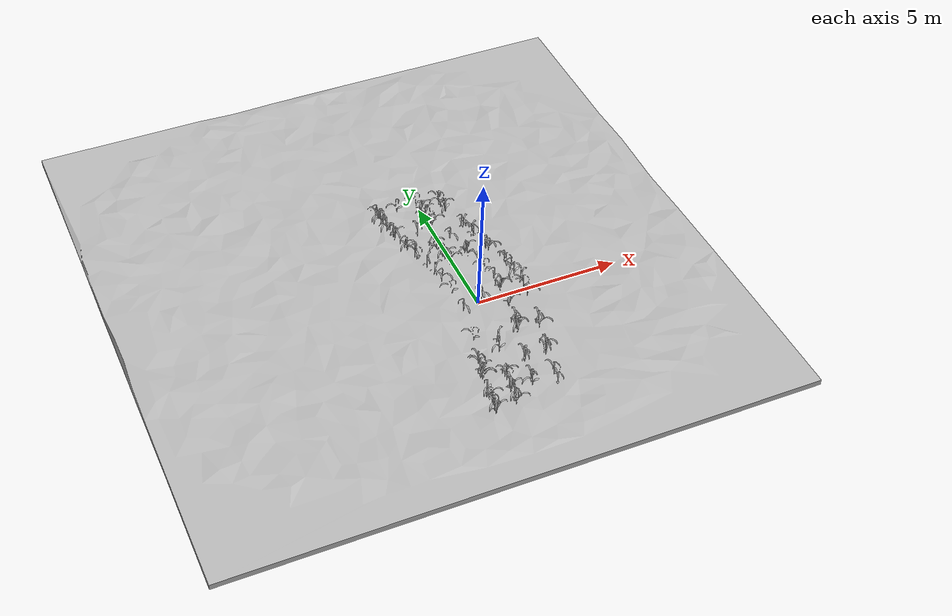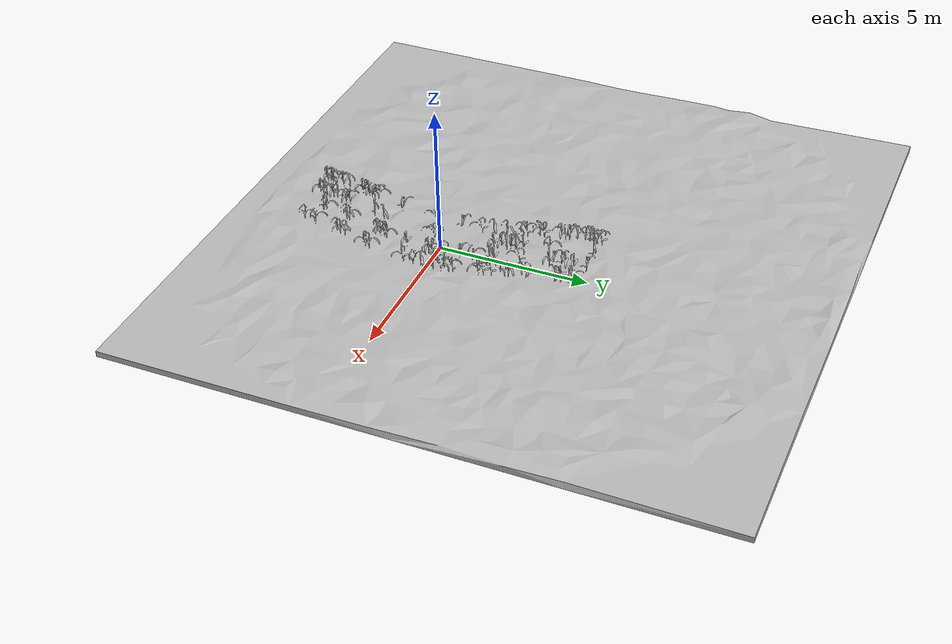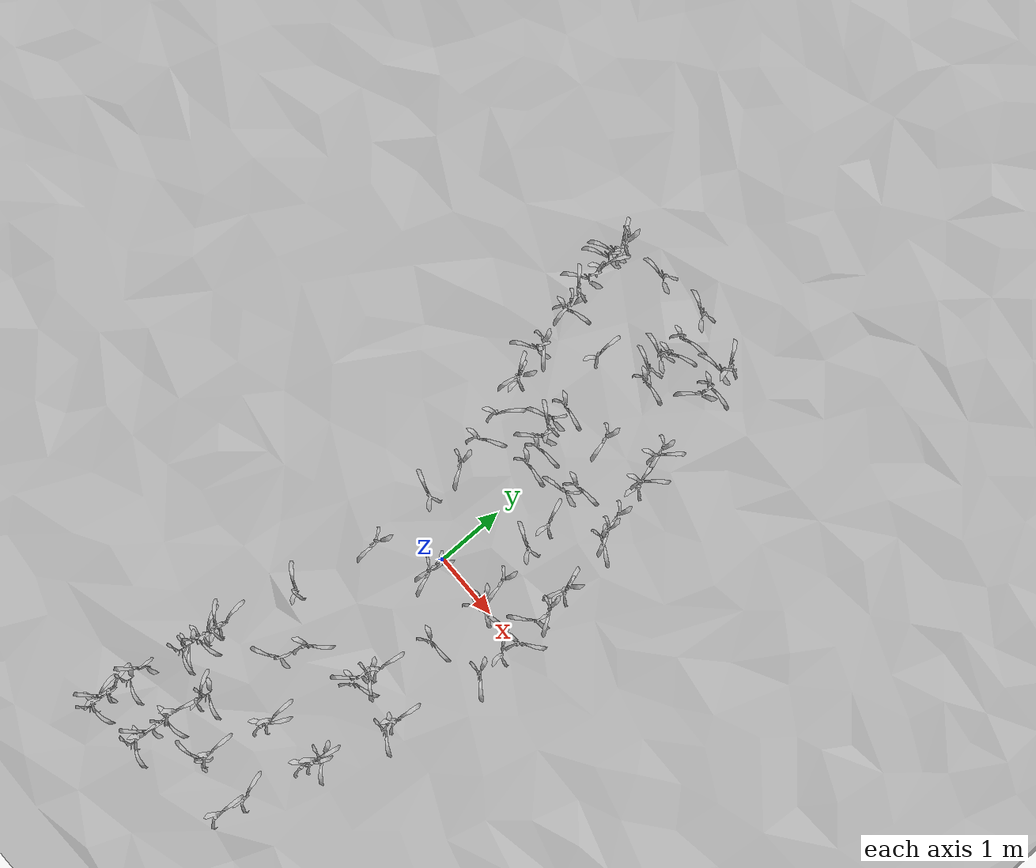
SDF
<sdf version="1.6">
 <world name="default">
  <light name="sun" type="directional">
   <pose>0 0 10 0 -0 0</pose>
   <diffuse>0.8 0.8 0.8 1</diffuse>
   <specular>0.2 0.2 0.2 1</specular>
   <attenuation>
    <range>1000</range>
    <constant>0.9</constant>
    <linear>0.01</linear>
    <quadratic>0.001</quadratic>
   </attenuation>
   <direction>-0.5 0.1 -0.9</direction>
  </light>
  <gravity>0 0 -9.8</gravity>
  <magnetic_field>6e-06 2.3e-05 -4.2e-05</magnetic_field>
  <atmosphere type="adiabatic"/>
  <physics name="default_physics" default="0" type="ode">
   <max_step_size>0.005</max_step_size>
   <real_time_factor>1</real_time_factor>
   <real_time_update_rate>200</real_time_update_rate>
  </physics>
  <spherical_coordinates>
   <surface_model>EARTH_WGS84</surface_model>
   <latitude_deg>0</latitude_deg>
   <longitude_deg>0</longitude_deg>
   <elevation>0</elevation>
   <heading_deg>0</heading_deg>
  </spherical_coordinates>
  <model name="custom_terrain">
   <static>1</static>
   <link name="link">
    <collision name="collision">
     <geometry><mesh><uri>model://custom_terrain/meshes/terrain.stl</uri></mesh></geometry>
    </collision>
    <visual name="visual">
     <geometry><mesh><uri>model://custom_terrain/meshes/terrain.stl</uri></mesh></geometry>
     <material>
      <script>
       <uri>model://custom_terrain/materials/scripts</uri>
       <uri>model://custom_terrain/materials/textures</uri>
       <name>custom_terrain/terrain</name>
      </script>
     </material>
    </visual>
   </link>
   <pose>-1.53507 2.74629 0 0 -0 0</pose>
  </model>
  <include>
   <uri>model://maize_01</uri>
   <pose>-1.6387334425387114 -4.860801532555282 0.2993744827908556 0.0 0.0 1.0147725840578488</pose>
   <name>maize_01_0001</name>
   <static>false</static>
  </include>
  <include>
   <uri>model://maize_01</uri>
   <pose>-1.6366912588203861 -4.736945238185992 0.2993744827908556 0.0 0.0 2.5828416819215074</pose>
   <name>maize_01_0002</name>
   <static>false</static>
  </include>
  <include>
   <uri>model://maize_01</uri>
   <pose>-1.6182898647847026 -4.630497239793811 0.2993744827908556 0.0 0.0 4.726639115709348</pose>
   <name>maize_01_0003</name>
   <static>false</static>
  </include>
  <include>
   <uri>model://maize_01</uri>
   <pose>-1.6005085933427061 -4.494608108031668 0.2993744827908556 0.0 0.0 2.6352779074851296</pose>
   <name>maize_01_0004</name>
   <static>false</static>
  </include>
  <include>
   <uri>model://maize_01</uri>
   <pose>-1.5747355287103877 -4.237218672649551 0.2993744827908556 0.0 0.0 0.5913606349278508</pose>
   <name>maize_01_0006</name>
   <static>false</static>
  </include>
  <include>
   <uri>model://maize_01</uri>
   <pose>-1.549101988490856 -3.9820853466441353 0.2993744827908556 0.0 0.0 4.830184841553505</pose>
   <name>maize_01_0008</name>
   <static>false</static>
  </include>
  <include>
   <uri>model://maize_01</uri>
   <pose>-1.4220208310090439 -3.443311011879065 0.2993744827908556 0.0 0.0 0.5703811316054429</pose>
   <name>maize_01_0012</name>
   <static>false</static>
  </include>
  <include>
   <uri>model://maize_01</uri>
   <pose>-1.3967996907870905 -3.3196678770765486 0.2993744827908556 0.0 0.0 0.23358256837414257</pose>
   <name>maize_01_0013</name>
   <static>false</static>
  </include>
  <include>
   <uri>model://maize_01</uri>
   <pose>-1.3800462759456555 -3.195752118163796 0.2993744827908556 0.0 0.0 1.03830328244503</pose>
   <name>maize_01_0014</name>
   <static>false</static>
  </include>
  <include>
   <uri>model://maize_01</uri>
   <pose>-1.332052848215348 -3.0477644671670734 0.2993744827908556 0.0 0.0 2.8741640696194697</pose>
   <name>maize_01_0015</name>
   <static>false</static>
  </include>
  <include>
   <uri>model://maize_01</uri>
   <pose>-1.2938183388905489 -2.9213147318945425 0.2993744827908556 0.0 0.0 3.223066781348012</pose>
   <name>maize_01_0016</name>
   <static>false</static>
  </include>
  <include>
   <uri>model://maize_01</uri>
   <pose>-1.2825723422940287 -2.7879080569475487 0.2993744827908556 0.0 0.0 2.4956532768360433</pose>
   <name>maize_01_0017</name>
   <static>false</static>
  </include>
  <include>
   <uri>model://maize_01</uri>
   <pose>-0.979033672690042 -1.7629115375293185 0.2998273288514628 0.0 0.0 3.3634917381232605</pose>
   <name>maize_01_0021</name>
   <static>false</static>
  </include>
  <include>
   <uri>model://maize_01</uri>
   <pose>-0.7598924382802437 -0.46517305035270406 0.2981473195484832 0.0 0.0 5.574287420692871</pose>
   <name>maize_01_0028</name>
   <static>false</static>
  </include>
  <include>
   <uri>model://maize_01</uri>
   <pose>-0.7476742520249 0.4534688260911326 0.2997254884390685 0.0 0.0 3.6267929504168888</pose>
   <name>maize_01_0030</name>
   <static>false</static>
  </include>
  <include>
   <uri>model://maize_01</uri>
   <pose>-0.8330488770165723 1.1012038551587289 0.2997254884390685 0.0 0.0 6.121951276176928</pose>
   <name>maize_01_0035</name>
   <static>false</static>
  </include>
  <include>
   <uri>model://maize_01</uri>
   <pose>-0.9269578781793363 1.4754369343992677 0.2997254884390685 0.0 0.0 1.3424186116473213</pose>
   <name>maize_01_0038</name>
   <static>false</static>
  </include>
  <include>
   <uri>model://maize_01</uri>
   <pose>-1.0214222380724824 1.888875910462268 0.2997254884390685 0.0 0.0 1.7296240484439396</pose>
   <name>maize_01_0041</name>
   <static>false</static>
  </include>
  <include>
   <uri>model://maize_01</uri>
   <pose>-1.167527271610706 2.4134708966818113 0.2997254884390685 0.0 0.0 2.951503555330785</pose>
   <name>maize_01_0045</name>
   <static>false</static>
  </include>
  <include>
   <uri>model://maize_01</uri>
   <pose>-1.194736410199071 2.525897447557093 0.2997254884390685 0.0 0.0 5.3837538329234</pose>
   <name>maize_01_0046</name>
   <static>false</static>
  </include>
  <include>
   <uri>model://maize_01</uri>
   <pose>-1.3021048139646663 2.918293905480087 0.2997254884390685 0.0 0.0 4.560602140564662</pose>
   <name>maize_01_0049</name>
   <static>false</static>
  </include>
  <include>
   <uri>model://maize_01</uri>
   <pose>-1.3394270006347686 3.0382822393797 0.2997254884390685 0.0 0.0 0.0537483834058226</pose>
   <name>maize_01_0050</name>
   <static>false</static>
  </include>
  <include>
   <uri>model://maize_01</uri>
   <pose>-1.49032067095992 3.565883607333024 0.2973737360275391 0.0 0.0 1.0616971749850024</pose>
   <name>maize_01_0052</name>
   <static>false</static>
  </include>
  <include>
   <uri>model://maize_01</uri>
   <pose>-1.4942350863893332 3.6986754639452992 0.2973737360275391 0.0 0.0 5.69024008207367</pose>
   <name>maize_01_0053</name>
   <static>false</static>
  </include>
  <include>
   <uri>model://maize_01</uri>
   <pose>-1.5295249345412638 3.8370775018122756 0.2973737360275391 0.0 0.0 3.1604125852018283</pose>
   <name>maize_01_0054</name>
   <static>false</static>
  </include>
  <include>
   <uri>model://maize_01</uri>
   <pose>-1.5660824943614686 4.0943089322430195 0.2973737360275391 0.0 0.0 4.618945488627085</pose>
   <name>maize_01_0056</name>
   <static>false</static>
  </include>
  <include>
   <uri>model://maize_01</uri>
   <pose>-1.5965697891227615 4.341637447747057 0.2973737360275391 0.0 0.0 1.966443186896607</pose>
   <name>maize_01_0058</name>
   <static>false</static>
  </include>
  <include>
   <uri>model://maize_01</uri>
   <pose>-1.6101056586154467 4.500902580242825 0.2973737360275391 0.0 0.0 4.460696390968553</pose>
   <name>maize_01_0059</name>
   <static>false</static>
  </include>
  <include>
   <uri>model://maize_01</uri>
   <pose>-1.6197085783346317 4.611721441963934 0.2973737360275391 0.0 0.0 4.435746150098774</pose>
   <name>maize_01_0060</name>
   <static>false</static>
  </include>
  <include>
   <uri>model://maize_01</uri>
   <pose>-1.626931962339416 4.736048886423933 0.2973737360275391 0.0 0.0 2.977252632305107</pose>
   <name>maize_01_0061</name>
   <static>false</static>
  </include>
  <include>
   <uri>model://maize_01</uri>
   <pose>-1.6470563910232947 4.876330447056643 0.2973737360275391 0.0 0.0 5.91685231009095</pose>
   <name>maize_01_0062</name>
   <static>false</static>
  </include>
  <include>
   <uri>model://maize_01</uri>
   <pose>-0.891349012338422 -4.728724909439914 0.2994136351158881 0.0 0.0 0.5627381864519259</pose>
   <name>maize_01_0064</name>
   <static>false</static>
  </include>
  <include>
   <uri>model://maize_01</uri>
   <pose>-0.8617448013199588 -4.60469252289142 0.2994136351158881 0.0 0.0 2.257559067652368</pose>
   <name>maize_01_0065</name>
   <static>false</static>
  </include>
  <include>
   <uri>model://maize_01</uri>
   <pose>-0.8493880157605036 -4.475485252639669 0.2994136351158881 0.0 0.0 4.754150016422587</pose>
   <name>maize_01_0066</name>
   <static>false</static>
  </include>
  <include>
   <uri>model://maize_01</uri>
   <pose>-0.8386474091623117 -4.226416894464551 0.2994136351158881 0.0 0.0 1.0093881480911593</pose>
   <name>maize_01_0067</name>
   <static>false</static>
  </include>
  <include>
   <uri>model://maize_01</uri>
   <pose>-0.8277541537906411 -4.0758975036795 0.2994136351158881 0.0 0.0 2.1080435384037366</pose>
   <name>maize_01_0068</name>
   <static>false</static>
  </include>
  <include>
   <uri>model://maize_01</uri>
   <pose>-0.7288637566160255 -3.691344808050913 0.2994136351158881 0.0 0.0 2.9233122299636496</pose>
   <name>maize_01_0071</name>
   <static>false</static>
  </include>
  <include>
   <uri>model://maize_01</uri>
   <pose>-0.7265585465992168 -3.557813417445041 0.2994136351158881 0.0 0.0 0.5490992438989158</pose>
   <name>maize_01_0072</name>
   <static>false</static>
  </include>
  <include>
   <uri>model://maize_01</uri>
   <pose>-0.44023375106968143 -2.5175180148341285 0.2994136351158881 0.0 0.0 4.432456439891921</pose>
   <name>maize_01_0080</name>
   <static>false</static>
  </include>
  <include>
   <uri>model://maize_01</uri>
   <pose>-0.3419802246590986 -2.1521694870171664 0.2994136351158881 0.0 0.0 1.5863407779401666</pose>
   <name>maize_01_0083</name>
   <static>false</static>
  </include>
  <include>
   <uri>model://maize_01</uri>
   <pose>0.009852998582268423 -0.18498351372148633 0.298102485255729 0.0 0.0 5.887417441404373</pose>
   <name>maize_01_0087</name>
   <static>false</static>
  </include>
  <include>
   <uri>model://maize_01</uri>
   <pose>0.02890639905661698 -0.04263502869926559 0.298102485255729 0.0 0.0 5.402150101167533</pose>
   <name>maize_01_0088</name>
   <static>false</static>
  </include>
  <include>
   <uri>model://maize_01</uri>
   <pose>-0.23596888704757954 1.763474865484935 0.29831289664654115 0.0 0.0 0.671659595515755</pose>
   <name>maize_01_0094</name>
   <static>false</static>
  </include>
  <include>
   <uri>model://maize_01</uri>
   <pose>-0.29876364071646666 2.015229014605015 0.29831289664654115 0.0 0.0 0.848726865250542</pose>
   <name>maize_01_0096</name>
   <static>false</static>
  </include>
  <include>
   <uri>model://maize_01</uri>
   <pose>-0.3376151942538226 2.1653857970379966 0.29831289664654115 0.0 0.0 4.700057417517724</pose>
   <name>maize_01_0097</name>
   <static>false</static>
  </include>
  <include>
   <uri>model://maize_01</uri>
   <pose>-0.3807294039417708 2.291650963028118 0.29831289664654115 0.0 0.0 3.387252833141608</pose>
   <name>maize_01_0098</name>
   <static>false</static>
  </include>
  <include>
   <uri>model://maize_01</uri>
   <pose>-0.4198602060917922 2.4320768542086335 0.29831289664654115 0.0 0.0 4.381218236234916</pose>
   <name>maize_01_0099</name>
   <static>false</static>
  </include>
  <include>
   <uri>model://maize_01</uri>
   <pose>-0.4827081390040495 2.67461044820226 0.29831289664654115 0.0 0.0 0.598511487596902</pose>
   <name>maize_01_0101</name>
   <static>false</static>
  </include>
  <include>
   <uri>model://maize_01</uri>
   <pose>-0.6975282117610667 3.459307764642071 0.2973882416031624 0.0 0.0 2.3515822794260743</pose>
   <name>maize_01_0104</name>
   <static>false</static>
  </include>
  <include>
   <uri>model://maize_01</uri>
   <pose>-0.8848064742678602 4.864922930397248 0.29730685611133106 0.0 0.0 3.9703934216368895</pose>
   <name>maize_01_0107</name>
   <static>false</static>
  </include>
  <include>
   <uri>model://maize_01</uri>
   <pose>-0.10352656726413431 -4.205171071632989 0.3002576502473761 0.0 0.0 4.118444866330467</pose>
   <name>maize_01_0109</name>
   <static>false</static>
  </include>
  <include>
   <uri>model://maize_01</uri>
   <pose>-0.07998354979662989 -4.079711488955331 0.3002576502473761 0.0 0.0 2.3535752486949524</pose>
   <name>maize_01_0110</name>
   <static>false</static>
  </include>
  <include>
   <uri>model://maize_01</uri>
   <pose>0.0950510893176211 -3.2707262253401566 0.2995577034030735 0.0 0.0 1.8686433109523088</pose>
   <name>maize_01_0111</name>
   <static>false</static>
  </include>
  <include>
   <uri>model://maize_01</uri>
   <pose>0.12150365581903125 -3.159316546335905 0.2995577034030735 0.0 0.0 2.3849720088895894</pose>
   <name>maize_01_0112</name>
   <static>false</static>
  </include>
  <include>
   <uri>model://maize_01</uri>
   <pose>0.45919794022360305 -1.9867497409410577 0.2984500143569016 0.0 0.0 1.1479160095201606</pose>
   <name>maize_01_0115</name>
   <static>false</static>
  </include>
  <include>
   <uri>model://maize_01</uri>
   <pose>0.4822396380767242 -1.8543383577524628 0.2984500143569016 0.0 0.0 4.778346712967146</pose>
   <name>maize_01_0116</name>
   <static>false</static>
  </include>
  <include>
   <uri>model://maize_01</uri>
   <pose>0.5033124124302124 -1.7133240101019969 0.2984500143569016 0.0 0.0 0.1770869344851179</pose>
   <name>maize_01_0117</name>
   <static>false</static>
  </include>
  <include>
   <uri>model://maize_01</uri>
   <pose>0.5646671849217051 -1.6052273571071598 0.2984500143569016 0.0 0.0 2.2079700691386</pose>
   <name>maize_01_0118</name>
   <static>false</static>
  </include>
  <include>
   <uri>model://maize_01</uri>
   <pose>0.7178086776835193 -0.8208592072972081 0.29938307810452064 0.0 0.0 0.8264886327259515</pose>
   <name>maize_01_0120</name>
   <static>false</static>
  </include>
  <include>
   <uri>model://maize_01</uri>
   <pose>0.7716184197539979 -0.0386953828795906 0.29826913593455867 0.0 0.0 0.9726245946229751</pose>
   <name>maize_01_0121</name>
   <static>false</static>
  </include>
  <include>
   <uri>model://maize_01</uri>
   <pose>0.7809727014624137 0.10214135540496841 0.29826913593455867 0.0 0.0 0.2741663555795066</pose>
   <name>maize_01_0122</name>
   <static>false</static>
  </include>
  <include>
   <uri>model://maize_01</uri>
   <pose>0.7668051012760642 0.48399009038220275 0.29826913593455867 0.0 0.0 5.7237998863716255</pose>
   <name>maize_01_0125</name>
   <static>false</static>
  </include>
  <include>
   <uri>model://maize_01</uri>
   <pose>0.687651201886132 0.9896978081925225 0.29755214491697923 0.0 0.0 3.525567761059428</pose>
   <name>maize_01_0126</name>
   <static>false</static>
  </include>
  <include>
   <uri>model://maize_01</uri>
   <pose>0.6159089243476323 1.399472303846035 0.29755214491697923 0.0 0.0 2.753088019650638</pose>
   <name>maize_01_0129</name>
   <static>false</static>
  </include>
  <include>
   <uri>model://maize_01</uri>
   <pose>0.46660426891189477 1.9005754546095803 0.29836780939251045 0.0 0.0 4.171361810790786</pose>
   <name>maize_01_0130</name>
   <static>false</static>
  </include>
  <include>
   <uri>model://maize_01</uri>
   <pose>0.44788866490879675 2.0622035685704962 0.29836780939251045 0.0 0.0 0.8860272250616008</pose>
   <name>maize_01_0131</name>
   <static>false</static>
  </include>
  <include>
   <uri>model://maize_01</uri>
   <pose>0.2233884497883674 2.8350517485770044 0.2979158092701435 0.0 0.0 5.77913508969168</pose>
   <name>maize_01_0133</name>
   <static>false</static>
  </include>
  <include>
   <uri>model://maize_01</uri>
   <pose>-0.014935148326324678 3.731416139282144 0.2980199791291171 0.0 0.0 0.6308342398589177</pose>
   <name>maize_01_0137</name>
   <static>false</static>
  </include>
  <include>
   <uri>model://maize_01</uri>
   <pose>-0.04390718378345591 3.8552772665015698 0.2980199791291171 0.0 0.0 3.6086340777335852</pose>
   <name>maize_01_0138</name>
   <static>false</static>
  </include>
  <include>
   <uri>model://maize_01</uri>
   <pose>-0.08122798274168105 4.10834612811476 0.2980199791291171 0.0 0.0 3.729475368316588</pose>
   <name>maize_01_0140</name>
   <static>false</static>
  </include>
  <include>
   <uri>model://maize_01</uri>
   <pose>-0.07168698894706924 4.238557980635739 0.2980199791291171 0.0 0.0 1.1786244081542014</pose>
   <name>maize_01_0141</name>
   <static>false</static>
  </include>
  <include>
   <uri>model://maize_01</uri>
   <pose>-0.11739482533949294 4.510699573989025 0.2980199791291171 0.0 0.0 0.9770925209095136</pose>
   <name>maize_01_0143</name>
   <static>false</static>
  </include>
  <include>
   <uri>model://maize_01</uri>
   <pose>-0.13751461522411199 4.91681236027078 0.2980199791291171 0.0 0.0 3.5749269718247203</pose>
   <name>maize_01_0146</name>
   <static>false</static>
  </include>
  <include>
   <uri>model://maize_01</uri>
   <pose>0.6212272159127705 -4.5010137102806835 0.3013360191007106 0.0 0.0 2.299784297445629</pose>
   <name>maize_01_0149</name>
   <static>false</static>
  </include>
  <include>
   <uri>model://maize_01</uri>
   <pose>0.6962086952846809 -4.0887485810268105 0.3013360191007106 0.0 0.0 2.6864013589086007</pose>
   <name>maize_01_0152</name>
   <static>false</static>
  </include>
  <include>
   <uri>model://maize_01</uri>
   <pose>0.8664241563402424 -3.2103805112087387 0.3004491128175361 0.0 0.0 1.9130533344117893</pose>
   <name>maize_01_0157</name>
   <static>false</static>
  </include>
  <include>
   <uri>model://maize_01</uri>
   <pose>0.9198554035991826 -3.071633768704318 0.3004491128175361 0.0 0.0 2.1520823533665436</pose>
   <name>maize_01_0158</name>
   <static>false</static>
  </include>
  <include>
   <uri>model://maize_01</uri>
   <pose>0.9279363931676219 -2.921474386939407 0.3004491128175361 0.0 0.0 0.08914021537876006</pose>
   <name>maize_01_0159</name>
   <static>false</static>
  </include>
  <include>
   <uri>model://maize_01</uri>
   <pose>1.2084071057411485 -2.0409512808058605 0.29941201512628784 0.0 0.0 0.259628049303035</pose>
   <name>maize_01_0164</name>
   <static>false</static>
  </include>
  <include>
   <uri>model://maize_01</uri>
   <pose>1.241408800048473 -1.8932924606845305 0.29941201512628784 0.0 0.0 2.234810416065024</pose>
   <name>maize_01_0165</name>
   <static>false</static>
  </include>
  <include>
   <uri>model://maize_01</uri>
   <pose>1.487940012153175 -0.5847317896265467 0.30089168178567693 0.0 0.0 0.14611919912073565</pose>
   <name>maize_01_0171</name>
   <static>false</static>
  </include>
  <include>
   <uri>model://maize_01</uri>
   <pose>1.5141698877560277 -0.22259167207895356 0.30089168178567693 0.0 0.0 3.0018174644929907</pose>
   <name>maize_01_0174</name>
   <static>false</static>
  </include>
  <include>
   <uri>model://maize_01</uri>
   <pose>1.529586383517405 0.04614759186582098 0.30089168178567693 0.0 0.0 1.448493227311919</pose>
   <name>maize_01_0176</name>
   <static>false</static>
  </include>
  <include>
   <uri>model://maize_01</uri>
   <pose>1.4853265931180792 0.44611053351740204 0.30089168178567693 0.0 0.0 4.635807837823648</pose>
   <name>maize_01_0179</name>
   <static>false</static>
  </include>
  <include>
   <uri>model://maize_01</uri>
   <pose>1.469433060981113 0.7017937817093227 0.30089168178567693 0.0 0.0 6.105354830504035</pose>
   <name>maize_01_0181</name>
   <static>false</static>
  </include>
  <include>
   <uri>model://maize_01</uri>
   <pose>1.449857680123408 0.9599706619148629 0.30089168178567693 0.0 0.0 2.6823795027053334</pose>
   <name>maize_01_0183</name>
   <static>false</static>
  </include>
  <include>
   <uri>model://maize_01</uri>
   <pose>1.4254758882729779 1.090288421134652 0.30089168178567693 0.0 0.0 5.256355085556892</pose>
   <name>maize_01_0184</name>
   <static>false</static>
  </include>
  <include>
   <uri>model://maize_01</uri>
   <pose>1.2239997518563173 1.8527203246502648 0.30089168178567693 0.0 0.0 0.2659364112981944</pose>
   <name>maize_01_0190</name>
   <static>false</static>
  </include>
  <include>
   <uri>model://maize_01</uri>
   <pose>1.1917953894415918 2.0129554993094145 0.30089168178567693 0.0 0.0 5.971044297910639</pose>
   <name>maize_01_0191</name>
   <static>false</static>
  </include>
  <include>
   <uri>model://maize_01</uri>
   <pose>1.1297454849645923 2.2527157918251537 0.30089168178567693 0.0 0.0 5.714598764443093</pose>
   <name>maize_01_0193</name>
   <static>false</static>
  </include>
  <include>
   <uri>model://maize_01</uri>
   <pose>1.0306861239000256 2.6692629309875415 0.30089168178567693 0.0 0.0 2.648248582597575</pose>
   <name>maize_01_0196</name>
   <static>false</static>
  </include>
  <include>
   <uri>model://maize_01</uri>
   <pose>0.9892761821390512 2.762049510202482 0.30089168178567693 0.0 0.0 1.6041314517263332</pose>
   <name>maize_01_0197</name>
   <static>false</static>
  </include>
  <include>
   <uri>model://maize_01</uri>
   <pose>0.861732296349937 3.157274306660907 0.30089168178567693 0.0 0.0 1.6798427147655755</pose>
   <name>maize_01_0200</name>
   <static>false</static>
  </include>
  <include>
   <uri>model://maize_01</uri>
   <pose>0.8499586671394312 3.2981771027173212 0.30089168178567693 0.0 0.0 5.806912252243501</pose>
   <name>maize_01_0201</name>
   <static>false</static>
  </include>
  <include>
   <uri>model://maize_01</uri>
   <pose>0.6603318372983922 4.218875125286874 0.2982588684536663 0.0 0.0 4.828041799891661</pose>
   <name>maize_01_0205</name>
   <static>false</static>
  </include>
  <include>
   <uri>model://maize_01</uri>
   <pose>0.6291214887343832 4.35185777551482 0.2982588684536663 0.0 0.0 0.6982434531779868</pose>
   <name>maize_01_0206</name>
   <static>false</static>
  </include>
  <include>
   <uri>model://maize_01</uri>
   <pose>0.6098851697293042 4.615591404852181 0.2982588684536663 0.0 0.0 4.136103617231672</pose>
   <name>maize_01_0208</name>
   <static>false</static>
  </include>
  <include>
   <uri>model://maize_01</uri>
   <pose>0.63175474336962 4.714008189702876 0.2982588684536663 0.0 0.0 3.014363023961753</pose>
   <name>maize_01_0209</name>
   <static>false</static>
  </include>
 </world>
</sdf>

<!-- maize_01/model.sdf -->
<sdf version="1.6">
  <model name='maize_01'>
    <static>true</static>
    <pose frame=''>0 0 0.05 0 -0 0</pose>
    <link name='maize_01_link'>
      <inertial>
        <pose>0 0 0.01 0 0 0</pose>
        <mass>0.3</mass>
        <inertia>
          <ixx>0.0033416667</ixx>
          <ixy>0</ixy>
          <ixz>0</ixz>
          <iyy>0.0033416667</iyy>
          <iyz>0</iyz>
          <izz>0.000016666667</izz>
        </inertia>
        <pose>0 0 0.1 0 0 0</pose>
      </inertial>
      <collision name='collision'>
        <pose>0 0 0.2 0 -0 0</pose>
        <geometry>
          <box>
            <size>0.02 0.02 0.4</size>
          </box>
        </geometry>
        <max_contacts>10</max_contacts>
        <surface>
          <contact>
            <ode/>
          </contact>
          <bounce/>
          <friction>
            <ode>
              <mu>10</mu>
              <mu2>10</mu2>
            </ode>
          </friction>
        </surface>
      </collision>
      <visual name='visual'>
        <geometry>
          <mesh>
            <uri>model://maize_01/meshes/maize_01.dae</uri>
            <scale>0.683166466464586 0.683166466464586 0.683166466464586</scale>
          </mesh>
        </geometry>
      </visual>
      <self_collide>0</self_collide>
      <enable_wind>0</enable_wind>
      <kinematic>0</kinematic>
    </link>
  </model>
</sdf>
